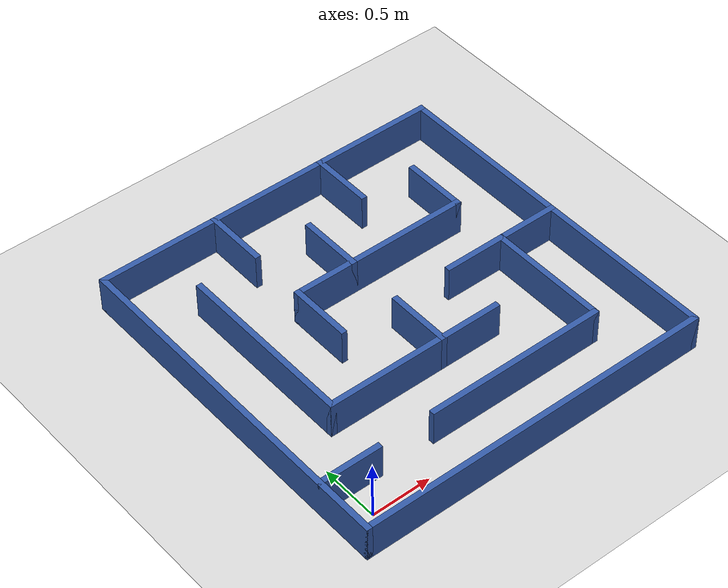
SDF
<?xml version="1.0"?>
<!-- AUTO-GENERATED by tb3_maze/generate_maze.py from config/maze_layout.yaml.
     Do not edit by hand: change the layout YAML and re-run the generator. -->
<sdf version="1.8">
  <world name="maze">

    <!-- Core systems. Without Sensors, the Burger's gpu_lidar publishes nothing. -->
    <plugin filename="gz-sim-physics-system" name="gz::sim::systems::Physics"/>
    <plugin filename="gz-sim-user-commands-system" name="gz::sim::systems::UserCommands"/>
    <plugin filename="gz-sim-scene-broadcaster-system" name="gz::sim::systems::SceneBroadcaster"/>
    <plugin filename="gz-sim-sensors-system" name="gz::sim::systems::Sensors">
      <render_engine>ogre2</render_engine>
    </plugin>
    <plugin filename="gz-sim-imu-system" name="gz::sim::systems::Imu"/>

    <physics name="1ms" type="ignored">
      <max_step_size>0.001</max_step_size>
      <real_time_factor>1.0</real_time_factor>
      <real_time_update_rate>1000</real_time_update_rate>
    </physics>

    <scene>
      <ambient>0.6 0.6 0.6 1</ambient>
      <background>0.8 0.85 0.9 1</background>
      <shadows>false</shadows>
      <grid>false</grid>
    </scene>

    <gui fullscreen="0">
      <camera name="user_camera">
        <pose>1.250 1.250 4.5 0 1.5708 0</pose>
      </camera>
    </gui>

    <light type="directional" name="sun">
      <cast_shadows>false</cast_shadows>
      <pose>0 0 10 0 0 0</pose>
      <diffuse>0.8 0.8 0.8 1</diffuse>
      <specular>0.2 0.2 0.2 1</specular>
      <direction>-0.5 0.1 -0.9</direction>
    </light>

    <!-- Ground plane defined inline (no Fuel download needed offline). -->
    <model name="ground_plane">
      <static>true</static>
      <link name="link">
        <collision name="collision">
          <geometry><plane><normal>0 0 1</normal><size>20 20</size></plane></geometry>
          <surface><friction><ode><mu>100</mu><mu2>50</mu2></ode></friction></surface>
        </collision>
        <visual name="visual">
          <geometry><plane><normal>0 0 1</normal><size>20 20</size></plane></geometry>
          <material>
            <ambient>0.85 0.85 0.85 1</ambient>
            <diffuse>0.85 0.85 0.85 1</diffuse>
          </material>
        </visual>
      </link>
    </model>

    <!-- Maze: 6x6 cells of 0.5 m, walls 0.05 m thick, 0.3 m high.
         Robot spawn = centre of cell (col 0, row 5) = world (0, 0). -->
    <model name="maze">
      <static>true</static>
      <pose>0 0 0 0 0 0</pose>
      <link name="wall_00">
        <pose>1.2500 2.7500 0.1500 0 0 0</pose>
        <collision name="collision">
          <geometry><box><size>3.0500 0.0500 0.3000</size></box></geometry>
        </collision>
        <visual name="visual">
          <geometry><box><size>3.0500 0.0500 0.3000</size></box></geometry>
          <material>
            <ambient>0.15 0.25 0.45 1</ambient>
            <diffuse>0.20 0.35 0.65 1</diffuse>
          </material>
        </visual>
      </link>
      <link name="wall_01">
        <pose>1.2500 -0.2500 0.1500 0 0 0</pose>
        <collision name="collision">
          <geometry><box><size>3.0500 0.0500 0.3000</size></box></geometry>
        </collision>
        <visual name="visual">
          <geometry><box><size>3.0500 0.0500 0.3000</size></box></geometry>
          <material>
            <ambient>0.15 0.25 0.45 1</ambient>
            <diffuse>0.20 0.35 0.65 1</diffuse>
          </material>
        </visual>
      </link>
      <link name="wall_02">
        <pose>-0.2500 1.2500 0.1500 0 0 0</pose>
        <collision name="collision">
          <geometry><box><size>0.0500 3.0500 0.3000</size></box></geometry>
        </collision>
        <visual name="visual">
          <geometry><box><size>0.0500 3.0500 0.3000</size></box></geometry>
          <material>
            <ambient>0.15 0.25 0.45 1</ambient>
            <diffuse>0.20 0.35 0.65 1</diffuse>
          </material>
        </visual>
      </link>
      <link name="wall_03">
        <pose>2.7500 1.2500 0.1500 0 0 0</pose>
        <collision name="collision">
          <geometry><box><size>0.0500 3.0500 0.3000</size></box></geometry>
        </collision>
        <visual name="visual">
          <geometry><box><size>0.0500 3.0500 0.3000</size></box></geometry>
          <material>
            <ambient>0.15 0.25 0.45 1</ambient>
            <diffuse>0.20 0.35 0.65 1</diffuse>
          </material>
        </visual>
      </link>
      <link name="wall_04">
        <pose>0.7500 2.5000 0.1500 0 0 0</pose>
        <collision name="collision">
          <geometry><box><size>0.0500 0.5500 0.3000</size></box></geometry>
        </collision>
        <visual name="visual">
          <geometry><box><size>0.0500 0.5500 0.3000</size></box></geometry>
          <material>
            <ambient>0.15 0.25 0.45 1</ambient>
            <diffuse>0.20 0.35 0.65 1</diffuse>
          </material>
        </visual>
      </link>
      <link name="wall_05">
        <pose>1.7500 2.5000 0.1500 0 0 0</pose>
        <collision name="collision">
          <geometry><box><size>0.0500 0.5500 0.3000</size></box></geometry>
        </collision>
        <visual name="visual">
          <geometry><box><size>0.0500 0.5500 0.3000</size></box></geometry>
          <material>
            <ambient>0.15 0.25 0.45 1</ambient>
            <diffuse>0.20 0.35 0.65 1</diffuse>
          </material>
        </visual>
      </link>
      <link name="wall_06">
        <pose>0.2500 1.5000 0.1500 0 0 0</pose>
        <collision name="collision">
          <geometry><box><size>0.0500 1.5500 0.3000</size></box></geometry>
        </collision>
        <visual name="visual">
          <geometry><box><size>0.0500 1.5500 0.3000</size></box></geometry>
          <material>
            <ambient>0.15 0.25 0.45 1</ambient>
            <diffuse>0.20 0.35 0.65 1</diffuse>
          </material>
        </visual>
      </link>
      <link name="wall_07">
        <pose>1.2500 2.0000 0.1500 0 0 0</pose>
        <collision name="collision">
          <geometry><box><size>0.0500 0.5500 0.3000</size></box></geometry>
        </collision>
        <visual name="visual">
          <geometry><box><size>0.0500 0.5500 0.3000</size></box></geometry>
          <material>
            <ambient>0.15 0.25 0.45 1</ambient>
            <diffuse>0.20 0.35 0.65 1</diffuse>
          </material>
        </visual>
      </link>
      <link name="wall_08">
        <pose>2.2500 2.0000 0.1500 0 0 0</pose>
        <collision name="collision">
          <geometry><box><size>0.0500 0.5500 0.3000</size></box></geometry>
        </collision>
        <visual name="visual">
          <geometry><box><size>0.0500 0.5500 0.3000</size></box></geometry>
          <material>
            <ambient>0.15 0.25 0.45 1</ambient>
            <diffuse>0.20 0.35 0.65 1</diffuse>
          </material>
        </visual>
      </link>
      <link name="wall_09">
        <pose>0.7500 1.5000 0.1500 0 0 0</pose>
        <collision name="collision">
          <geometry><box><size>0.0500 0.5500 0.3000</size></box></geometry>
        </collision>
        <visual name="visual">
          <geometry><box><size>0.0500 0.5500 0.3000</size></box></geometry>
          <material>
            <ambient>0.15 0.25 0.45 1</ambient>
            <diffuse>0.20 0.35 0.65 1</diffuse>
          </material>
        </visual>
      </link>
      <link name="wall_10">
        <pose>1.2500 1.0000 0.1500 0 0 0</pose>
        <collision name="collision">
          <geometry><box><size>0.0500 0.5500 0.3000</size></box></geometry>
        </collision>
        <visual name="visual">
          <geometry><box><size>0.0500 0.5500 0.3000</size></box></geometry>
          <material>
            <ambient>0.15 0.25 0.45 1</ambient>
            <diffuse>0.20 0.35 0.65 1</diffuse>
          </material>
        </visual>
      </link>
      <link name="wall_11">
        <pose>2.2500 0.7500 0.1500 0 0 0</pose>
        <collision name="collision">
          <geometry><box><size>0.0500 1.0500 0.3000</size></box></geometry>
        </collision>
        <visual name="visual">
          <geometry><box><size>0.0500 1.0500 0.3000</size></box></geometry>
          <material>
            <ambient>0.15 0.25 0.45 1</ambient>
            <diffuse>0.20 0.35 0.65 1</diffuse>
          </material>
        </visual>
      </link>
      <link name="wall_12">
        <pose>1.5000 1.7500 0.1500 0 0 0</pose>
        <collision name="collision">
          <geometry><box><size>1.5500 0.0500 0.3000</size></box></geometry>
        </collision>
        <visual name="visual">
          <geometry><box><size>1.5500 0.0500 0.3000</size></box></geometry>
          <material>
            <ambient>0.15 0.25 0.45 1</ambient>
            <diffuse>0.20 0.35 0.65 1</diffuse>
          </material>
        </visual>
      </link>
      <link name="wall_13">
        <pose>2.2500 1.2500 0.1500 0 0 0</pose>
        <collision name="collision">
          <geometry><box><size>1.0500 0.0500 0.3000</size></box></geometry>
        </collision>
        <visual name="visual">
          <geometry><box><size>1.0500 0.0500 0.3000</size></box></geometry>
          <material>
            <ambient>0.15 0.25 0.45 1</ambient>
            <diffuse>0.20 0.35 0.65 1</diffuse>
          </material>
        </visual>
      </link>
      <link name="wall_14">
        <pose>1.0000 0.7500 0.1500 0 0 0</pose>
        <collision name="collision">
          <geometry><box><size>1.5500 0.0500 0.3000</size></box></geometry>
        </collision>
        <visual name="visual">
          <geometry><box><size>1.5500 0.0500 0.3000</size></box></geometry>
          <material>
            <ambient>0.15 0.25 0.45 1</ambient>
            <diffuse>0.20 0.35 0.65 1</diffuse>
          </material>
        </visual>
      </link>
      <link name="wall_15">
        <pose>0.0000 0.2500 0.1500 0 0 0</pose>
        <collision name="collision">
          <geometry><box><size>0.5500 0.0500 0.3000</size></box></geometry>
        </collision>
        <visual name="visual">
          <geometry><box><size>0.5500 0.0500 0.3000</size></box></geometry>
          <material>
            <ambient>0.15 0.25 0.45 1</ambient>
            <diffuse>0.20 0.35 0.65 1</diffuse>
          </material>
        </visual>
      </link>
      <link name="wall_16">
        <pose>1.5000 0.2500 0.1500 0 0 0</pose>
        <collision name="collision">
          <geometry><box><size>1.5500 0.0500 0.3000</size></box></geometry>
        </collision>
        <visual name="visual">
          <geometry><box><size>1.5500 0.0500 0.3000</size></box></geometry>
          <material>
            <ambient>0.15 0.25 0.45 1</ambient>
            <diffuse>0.20 0.35 0.65 1</diffuse>
          </material>
        </visual>
      </link>
    </model>

  </world>
</sdf>
